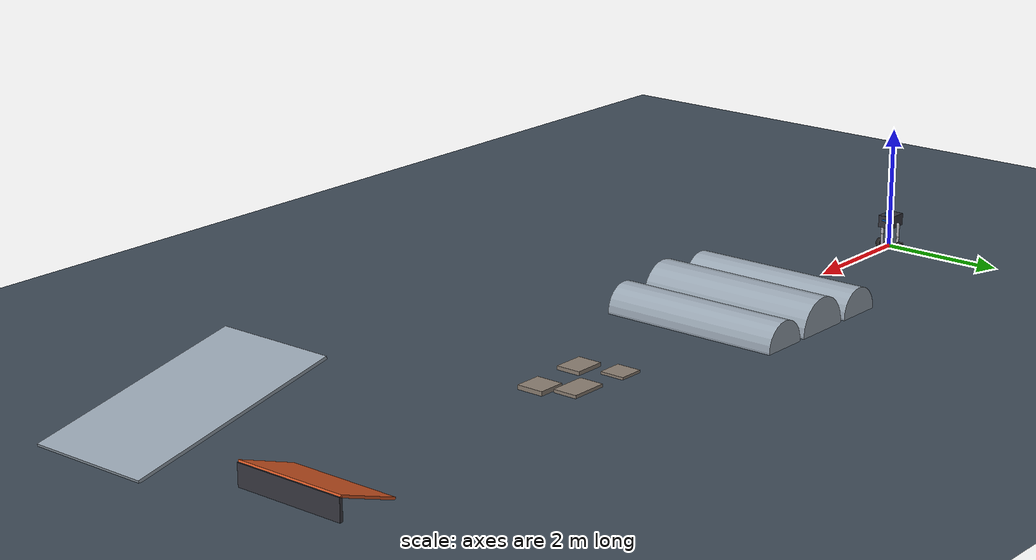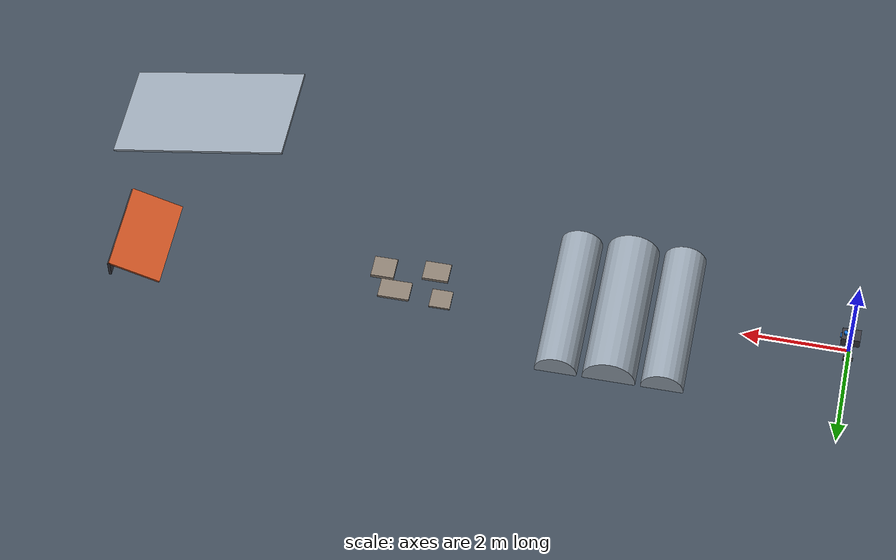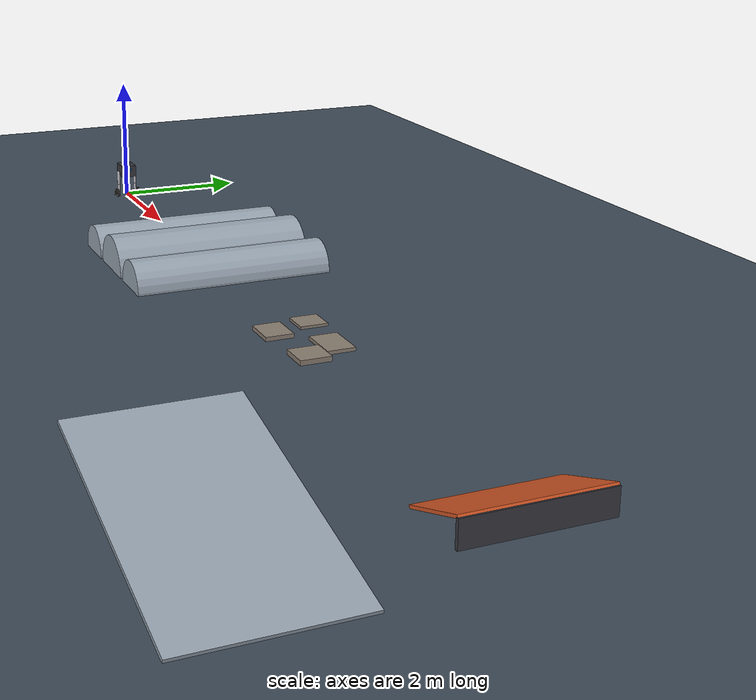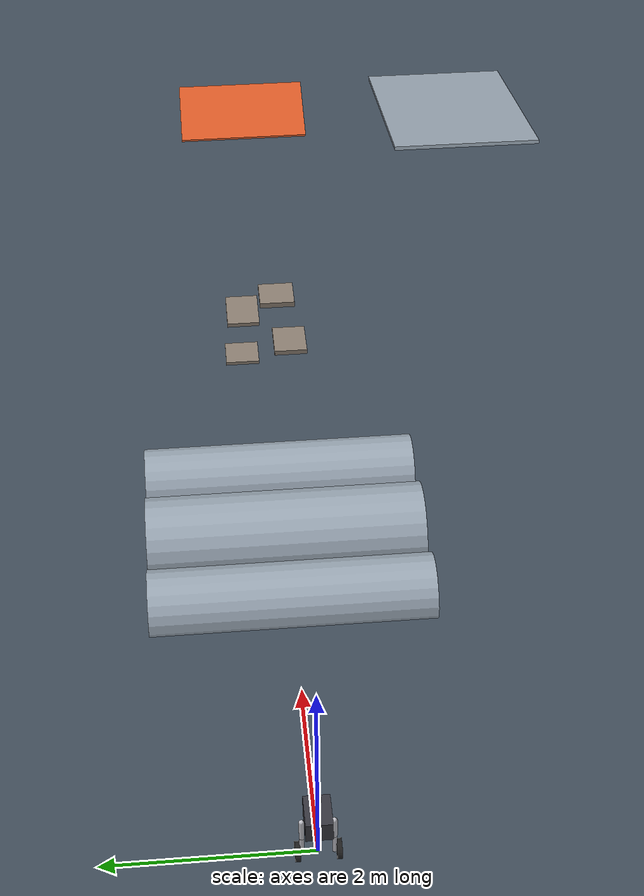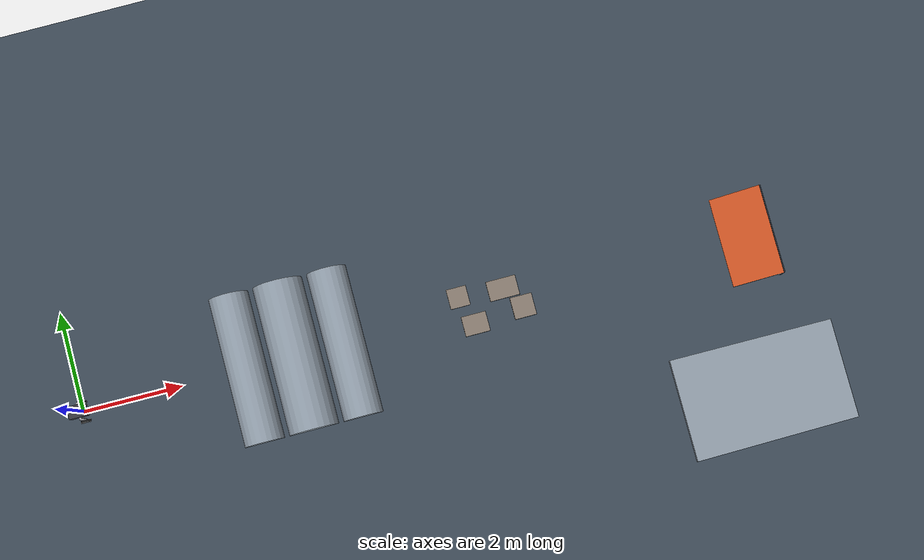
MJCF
<mujoco model="balancebot_skatepark">
  <compiler angle="radian" coordinate="local" />

  <option timestep="0.001" gravity="0 0 -9.81" integrator="Euler" />

  <visual>
    <headlight ambient="0.4 0.4 0.4" diffuse="0.8 0.8 0.8" specular="0.1 0.1 0.1" />
    <rgba haze="0.15 0.25 0.35 1" />
  </visual>

  <asset>
    <texture type="skybox" builtin="gradient" rgb1="0.3 0.5 0.7" rgb2="0 0 0" width="512" height="512" />
    <texture name="grid" type="2d" builtin="checker" width="512" height="512" rgb1="0.2 0.25 0.3" rgb2="0.3 0.35 0.4" />
    <material name="grid_mat" texture="grid" texrepeat="20 20" reflectance="0.2" />
    <material name="torso_mat" rgba="0.22 0.22 0.25 1.0" specular="0.3" />
    <material name="leg_mat" rgba="0.75 0.75 0.78 1.0" specular="0.5" />
    <material name="wheel_mat" rgba="0.12 0.12 0.12 1.0" roughness="0.8" />
    <material name="sensor_mat" rgba="0.10 0.45 0.85 1.0" />
    <material name="bump_mat" rgba="0.60 0.65 0.70 1.0" />
    <material name="rough_mat" rgba="0.55 0.50 0.45 1.0" />
    <material name="ramp_mat" rgba="0.85 0.35 0.15 1.0" />
  </asset>

  <worldbody>
    <light directional="true" pos="0 0 20" dir="-0.4 0.2 -0.9" diffuse="0.8 0.8 0.8" specular="0.2 0.2 0.2" />

    <!-- ================= Zone 1: Flat Ground Plane ================= -->
    <geom name="floor" type="plane" size="50 50 0.1" material="grid_mat" friction="1.0 0.005 0.0001" />

    <!-- ================= Zone 2: Gentle Sinusoidal Bumps ================= -->
    <!-- Cylinders embedded in ground along x = 3.3 to 5.3 m -->
    <geom name="bump1" type="cylinder" size="0.4 1.5" pos="3.3 0 0.015" quat="0.7071 0.7071 0 0" material="bump_mat" friction="1.0" />
    <geom name="bump2" type="cylinder" size="0.5 1.5" pos="4.3 0 0.020" quat="0.7071 0.7071 0 0" material="bump_mat" friction="1.0" />
    <geom name="bump3" type="cylinder" size="0.4 1.5" pos="5.3 0 0.015" quat="0.7071 0.7071 0 0" material="bump_mat" friction="1.0" />

    <!-- ================= Zone 3: Rough Uneven Blocks ================= -->
    <geom name="rough1" type="box" size="0.20 0.20 0.02" pos="7.7 0.30 0.02" material="rough_mat" friction="1.0" />
    <geom name="rough2" type="box" size="0.25 0.20 0.03" pos="7.9 -0.30 0.03" material="rough_mat" friction="1.0" />
    <geom name="rough3" type="box" size="0.30 0.20 0.025" pos="8.6 0.25 0.025" material="rough_mat" friction="1.0" />
    <geom name="rough4" type="box" size="0.22 0.22 0.035" pos="8.9 -0.20 0.035" material="rough_mat" friction="1.0" />

    <!-- ================= Zone 4: Incline Slope (12 degrees) ================= -->
    <!-- length 3.5m, width 2.0m, pos=(13, -3, 0.36), rotated around Y by 0.2094 rad -->
    <geom name="slope" type="box" size="1.75 1.0 0.025" pos="13.0 -3.0 0.36" axisangle="0 1 0 0.2094" material="bump_mat" friction="1.0" />

    <!-- ================= Zone 5: Jump Ramp (20 deg incline, 0.35m height) ================= -->
    <!-- Ramp board tilted at 20 degrees (0.3491 rad). Lip top edge is at x = 14.0, z = 0.35m -->
    <geom name="ramp_board" type="box" size="0.512 0.90 0.02" pos="13.52 0 0.175" axisangle="0 1 0 -0.3491" material="ramp_mat" friction="1.2 0.005 0.0001" />
    <geom name="ramp_lip" type="box" size="0.025 0.90 0.17" pos="14.0 0 0.17" material="torso_mat" friction="1.0" />

    <!-- ================= BalanceBot Robot Model ================= -->
    <body name="base_link" pos="0 0 0.45">
      <freejoint name="root" />
      <inertial pos="0 0 0" mass="12.0" diaginertia="0.1025 0.1625 0.1850" />
      <geom name="torso_geom" type="box" size="0.175 0.125 0.10" material="torso_mat" />

      <!-- Sensor Sites -->
      <site name="imu" pos="0 0 0" size="0.01" rgba="0.1 0.45 0.85 1" />
      <site name="lidar" pos="0.10 0 0.1225" size="0.015" rgba="0.1 0.1 0.1 1" />
      <site name="camera" pos="0.185 0 0.03" size="0.01" rgba="0.1 0.1 0.1 1" />

      <!-- Visual sensor adornments -->
      <geom name="lidar_vis" type="cylinder" size="0.04 0.0225" pos="0.10 0 0.1225" material="sensor_mat" mass="0.20" />
      <geom name="camera_vis" type="box" size="0.0125 0.045 0.0125" pos="0.185 0 0.03" material="sensor_mat" mass="0.10" />

      <!-- Native Front Camera for Vision Rendering -->
      <camera name="robot_front_camera" pos="0.185 0 0.03" xyaxes="0 -1 0 0 0 1" />

      <!-- ================= Left Leg ================= -->
      <body name="left_thigh" pos="0.0 0.15 -0.05">
        <joint name="left_hip_joint" type="hinge" axis="0 1 0" range="-1.20 1.20" damping="0.5" frictionloss="0.1" />
        <inertial pos="0 0 -0.10" mass="0.8" diaginertia="0.0028 0.0028 0.00025" />
        <geom name="left_thigh_geom" type="capsule" fromto="0 0 0 0 0 -0.20" size="0.025" material="leg_mat" />

        <body name="left_shin" pos="0 0 -0.20">
          <joint name="left_knee_joint" type="hinge" axis="0 1 0" range="0.0 2.30" damping="0.5" frictionloss="0.1" />
          <inertial pos="0 0 -0.10" mass="0.8" diaginertia="0.0028 0.0028 0.00025" />
          <geom name="left_shin_geom" type="capsule" fromto="0 0 0 0 0 -0.20" size="0.022" material="leg_mat" />

          <body name="left_wheel" pos="0 0.04 -0.20">
            <joint name="left_wheel_joint" type="hinge" axis="0 1 0" damping="0.05" frictionloss="0.02" />
            <inertial pos="0 0 0" mass="1.5" diaginertia="0.00406 0.00750 0.00406" />
            <geom name="left_wheel_geom" type="cylinder" size="0.10 0.025" quat="0.7071 0.7071 0 0" material="wheel_mat" friction="1.0 0.005 0.0001" />
          </body>
        </body>
      </body>

      <!-- ================= Right Leg ================= -->
      <body name="right_thigh" pos="0.0 -0.15 -0.05">
        <joint name="right_hip_joint" type="hinge" axis="0 1 0" range="-1.20 1.20" damping="0.5" frictionloss="0.1" />
        <inertial pos="0 0 -0.10" mass="0.8" diaginertia="0.0028 0.0028 0.00025" />
        <geom name="right_thigh_geom" type="capsule" fromto="0 0 0 0 0 -0.20" size="0.025" material="leg_mat" />

        <body name="right_shin" pos="0 0 -0.20">
          <joint name="right_knee_joint" type="hinge" axis="0 1 0" range="0.0 2.30" damping="0.5" frictionloss="0.1" />
          <inertial pos="0 0 -0.10" mass="0.8" diaginertia="0.0028 0.0028 0.00025" />
          <geom name="right_shin_geom" type="capsule" fromto="0 0 0 0 0 -0.20" size="0.022" material="leg_mat" />

          <body name="right_wheel" pos="0 -0.04 -0.20">
            <joint name="right_wheel_joint" type="hinge" axis="0 1 0" damping="0.05" frictionloss="0.02" />
            <inertial pos="0 0 0" mass="1.5" diaginertia="0.00406 0.00750 0.00406" />
            <geom name="right_wheel_geom" type="cylinder" size="0.10 0.025" quat="0.7071 0.7071 0 0" material="wheel_mat" friction="1.0 0.005 0.0001" />
          </body>
        </body>
      </body>

    </body>
  </worldbody>

  <contact>
    <exclude body1="base_link" body2="left_thigh" />
    <exclude body1="base_link" body2="right_thigh" />
    <exclude body1="left_thigh" body2="left_shin" />
    <exclude body1="right_thigh" body2="right_shin" />
    <exclude body1="left_shin" body2="left_wheel" />
    <exclude body1="right_shin" body2="right_wheel" />
  </contact>

  <actuator>
    <!-- Left & Right Hip Pitch Motors (Torque limit 50 N*m) -->
    <motor name="left_hip_motor" joint="left_hip_joint" gear="1" ctrlrange="-50 50" ctrllimited="true" />
    <motor name="right_hip_motor" joint="right_hip_joint" gear="1" ctrlrange="-50 50" ctrllimited="true" />

    <!-- Left & Right Knee Pitch Motors (Torque limit 50 N*m) -->
    <motor name="left_knee_motor" joint="left_knee_joint" gear="1" ctrlrange="-50 50" ctrllimited="true" />
    <motor name="right_knee_motor" joint="right_knee_joint" gear="1" ctrlrange="-50 50" ctrllimited="true" />

    <!-- Left & Right Wheel Motors (Torque limit 25 N*m) -->
    <motor name="left_wheel_motor" joint="left_wheel_joint" gear="1" ctrlrange="-25 25" ctrllimited="true" />
    <motor name="right_wheel_motor" joint="right_wheel_joint" gear="1" ctrlrange="-25 25" ctrllimited="true" />
  </actuator>

  <sensor>
    <gyro name="imu_gyro" site="imu" />
    <accelerometer name="imu_accel" site="imu" />
    <framepos name="imu_pos" objtype="site" objname="imu" />
    <framequat name="imu_quat" objtype="site" objname="imu" />
    <framelinvel name="imu_linvel" objtype="site" objname="imu" />
    <frameangvel name="imu_angvel" objtype="site" objname="imu" />
    <rangefinder name="lidar_forward" site="lidar" />
  </sensor>
</mujoco>
